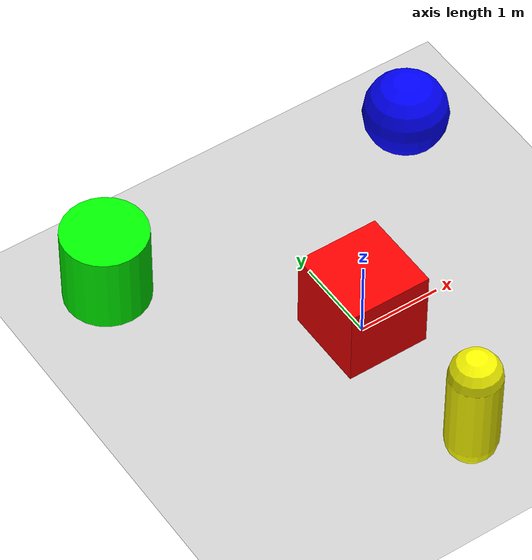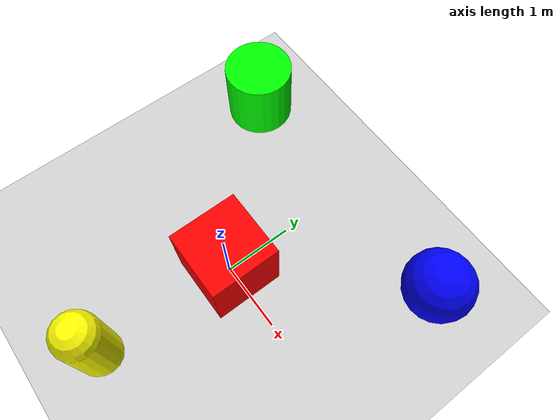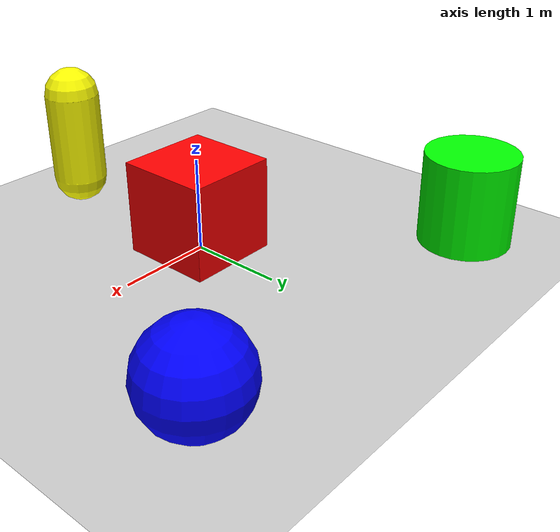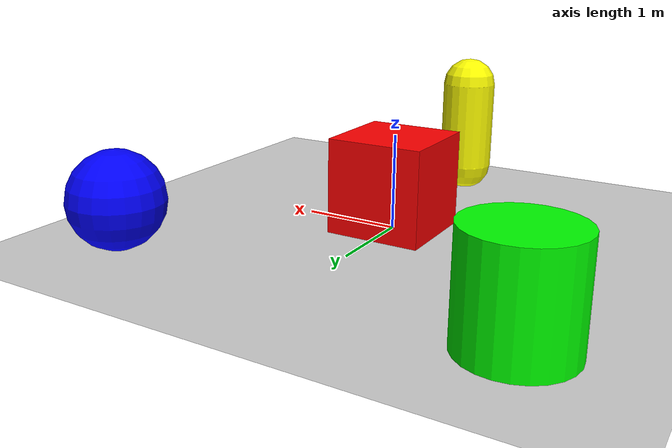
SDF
<?xml version="1.0" ?>
<sdf version="1.8">
  <world name="simple_shapes">
    <!-- Physics settings -->
    <physics name="1ms" type="ignored">
      <max_step_size>0.001</max_step_size>
      <real_time_factor>1.0</real_time_factor>
    </physics>

    <!-- Plugin for ROS2 integration -->
    <plugin
      filename="gz-sim-physics-system"
      name="gz::sim::systems::Physics">
    </plugin>
    <plugin
      filename="gz-sim-user-commands-system"
      name="gz::sim::systems::UserCommands">
    </plugin>
    <plugin
      filename="gz-sim-scene-broadcaster-system"
      name="gz::sim::systems::SceneBroadcaster">
    </plugin>

    <!-- Lighting -->
    <light type="directional" name="sun">
      <cast_shadows>true</cast_shadows>
      <pose>0 0 10 0 0 0</pose>
      <diffuse>0.8 0.8 0.8 1</diffuse>
      <specular>0.2 0.2 0.2 1</specular>
      <attenuation>
        <range>1000</range>
        <constant>0.9</constant>
        <linear>0.01</linear>
        <quadratic>0.001</quadratic>
      </attenuation>
      <direction>-0.5 0.1 -0.9</direction>
    </light>

    <!-- Ground plane -->
    <model name="ground_plane">
      <static>true</static>
      <link name="link">
        <collision name="collision">
          <geometry>
            <plane>
              <normal>0 0 1</normal>
              <size>100 100</size>
            </plane>
          </geometry>
        </collision>
        <visual name="visual">
          <geometry>
            <plane>
              <normal>0 0 1</normal>
              <size>100 100</size>
            </plane>
          </geometry>
          <material>
            <ambient>0.8 0.8 0.8 1</ambient>
            <diffuse>0.8 0.8 0.8 1</diffuse>
            <specular>0.8 0.8 0.8 1</specular>
          </material>
        </visual>
      </link>
    </model>

    <!-- Red Box -->
    <model name="red_box">
      <pose>0 0 0.5 0 0 0</pose>
      <link name="box_link">
        <inertial>
          <mass>1.0</mass>
          <inertia>
            <ixx>0.166667</ixx>
            <ixy>0.0</ixy>
            <ixz>0.0</ixz>
            <iyy>0.166667</iyy>
            <iyz>0.0</iyz>
            <izz>0.166667</izz>
          </inertia>
        </inertial>
        <collision name="collision">
          <geometry>
            <box>
              <size>1 1 1</size>
            </box>
          </geometry>
        </collision>
        <visual name="visual">
          <geometry>
            <box>
              <size>1 1 1</size>
            </box>
          </geometry>
          <material>
            <ambient>1 0 0 1</ambient>
            <diffuse>1 0 0 1</diffuse>
            <specular>0.5 0.5 0.5 1</specular>
          </material>
        </visual>
      </link>
    </model>

    <!-- Blue Sphere -->
    <model name="blue_sphere">
      <pose>2 2 0.5 0 0 0</pose>
      <link name="sphere_link">
        <inertial>
          <mass>1.0</mass>
          <inertia>
            <ixx>0.1</ixx>
            <ixy>0.0</ixy>
            <ixz>0.0</ixz>
            <iyy>0.1</iyy>
            <iyz>0.0</iyz>
            <izz>0.1</izz>
          </inertia>
        </inertial>
        <collision name="collision">
          <geometry>
            <sphere>
              <radius>0.5</radius>
            </sphere>
          </geometry>
        </collision>
        <visual name="visual">
          <geometry>
            <sphere>
              <radius>0.5</radius>
            </sphere>
          </geometry>
          <material>
            <ambient>0 0 1 1</ambient>
            <diffuse>0 0 1 1</diffuse>
            <specular>0.5 0.5 0.5 1</specular>
          </material>
        </visual>
      </link>
    </model>

    <!-- Green Cylinder -->
    <model name="green_cylinder">
      <pose>-2 2 0.5 0 0 0</pose>
      <link name="cylinder_link">
        <inertial>
          <mass>1.0</mass>
          <inertia>
            <ixx>0.145833</ixx>
            <ixy>0.0</ixy>
            <ixz>0.0</ixz>
            <iyy>0.145833</iyy>
            <iyz>0.0</iyz>
            <izz>0.125</izz>
          </inertia>
        </inertial>
        <collision name="collision">
          <geometry>
            <cylinder>
              <radius>0.5</radius>
              <length>1.0</length>
            </cylinder>
          </geometry>
        </collision>
        <visual name="visual">
          <geometry>
            <cylinder>
              <radius>0.5</radius>
              <length>1.0</length>
            </cylinder>
          </geometry>
          <material>
            <ambient>0 1 0 1</ambient>
            <diffuse>0 1 0 1</diffuse>
            <specular>0.5 0.5 0.5 1</specular>
          </material>
        </visual>
      </link>
    </model>

    <!-- Yellow Capsule -->
    <model name="yellow_capsule">
      <pose>0 -2 0.75 0 0 0</pose>
      <link name="capsule_link">
        <inertial>
          <mass>1.0</mass>
          <inertia>
            <ixx>0.1</ixx>
            <ixy>0.0</ixy>
            <ixz>0.0</ixz>
            <iyy>0.1</iyy>
            <iyz>0.0</iyz>
            <izz>0.1</izz>
          </inertia>
        </inertial>
        <collision name="collision">
          <geometry>
            <capsule>
              <radius>0.3</radius>
              <length>1.0</length>
            </capsule>
          </geometry>
        </collision>
        <visual name="visual">
          <geometry>
            <capsule>
              <radius>0.3</radius>
              <length>1.0</length>
            </capsule>
          </geometry>
          <material>
            <ambient>1 1 0 1</ambient>
            <diffuse>1 1 0 1</diffuse>
            <specular>0.5 0.5 0.5 1</specular>
          </material>
        </visual>
      </link>
    </model>

  </world>
</sdf>
